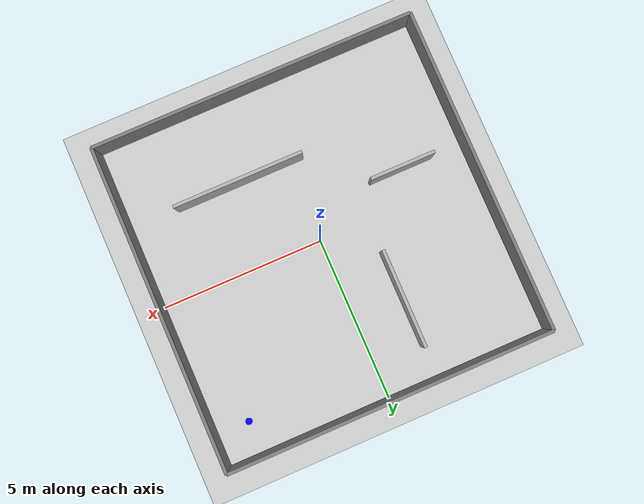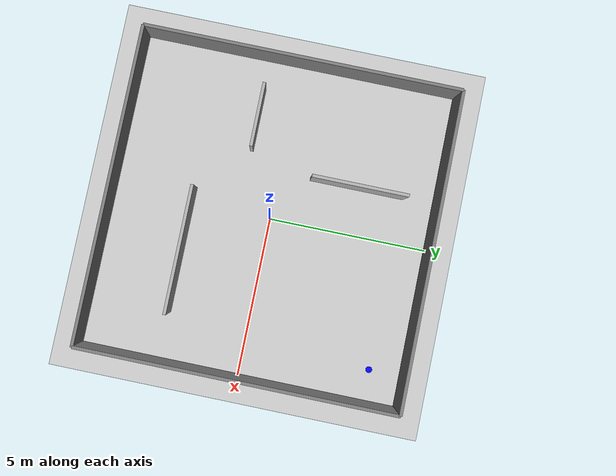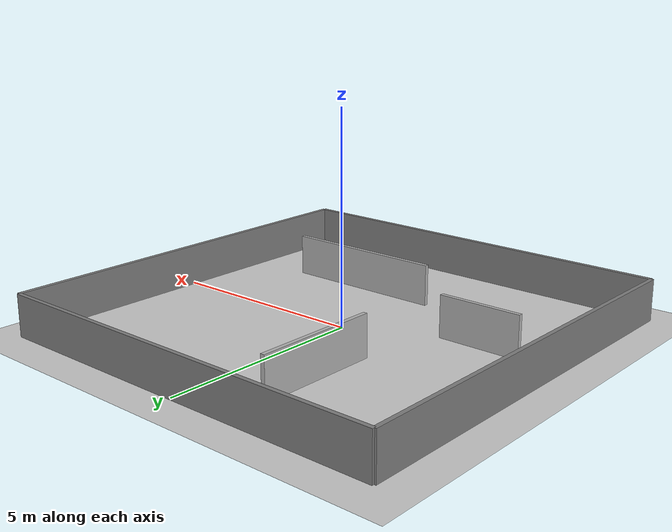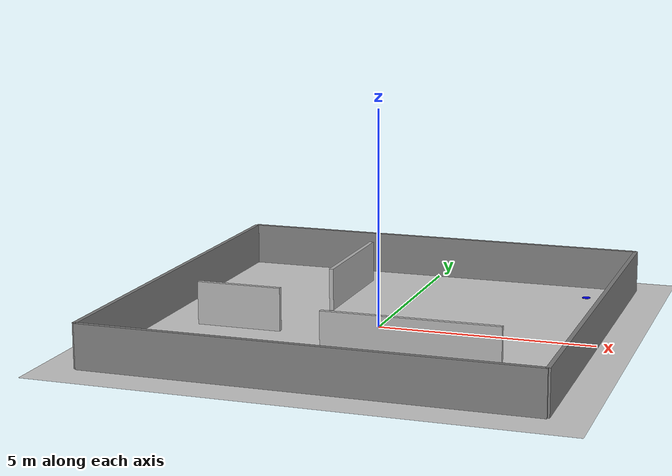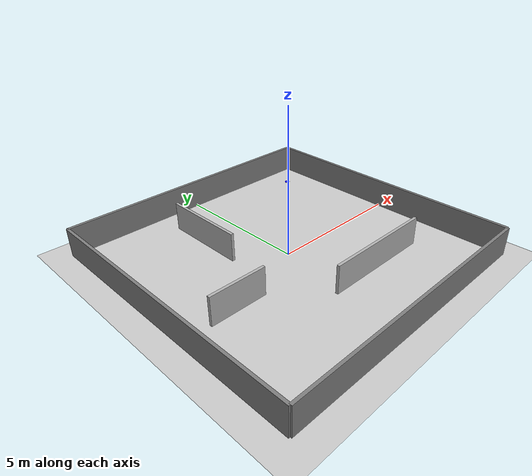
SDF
<?xml version="1.0" ?>
<sdf version="1.6">
  <world name="maze_world">
    <!-- 包含阳光、地面等基础元素 -->
    <include>
      <uri>model://sun</uri>
    </include>
    <include>
      <uri>model://ground_plane</uri>
    </include>

    <!-- 迷宫墙壁 - 外部围墙 -->
    <model name="wall_out_1">
      <static>true</static>
      <pose>0 5 0.5 0 0 0</pose>
      <link name="link">
        <collision name="collision">
          <geometry>
            <box><size>10 0.1 1</size></box>
          </geometry>
        </collision>
        <visual name="visual">
          <geometry>
            <box><size>10 0.1 1</size></box>
          </geometry>
          <material><ambient>0.5 0.5 0.5</ambient></material>
        </visual>
      </link>
    </model>
    <model name="wall_out_2">
      <static>true</static>
      <pose>5 0 0.5 0 0 1.57</pose>
      <link name="link">
        <collision name="collision">
          <geometry>
            <box><size>10 0.1 1</size></box>
          </geometry>
        </collision>
        <visual name="visual">
          <geometry>
            <box><size>10 0.1 1</size></box>
          </geometry>
          <material><ambient>0.5 0.5 0.5</ambient></material>
        </visual>
      </link>
    </model>
    <model name="wall_out_3">
      <static>true</static>
      <pose>0 -5 0.5 0 0 0</pose>
      <link name="link">
        <collision name="collision">
          <geometry>
            <box><size>10 0.1 1</size></box>
          </geometry>
        </collision>
        <visual name="visual">
          <geometry>
            <box><size>10 0.1 1</size></box>
          </geometry>
          <material><ambient>0.5 0.5 0.5</ambient></material>
        </visual>
      </link>
    </model>
    <model name="wall_out_4">
      <static>true</static>
      <pose>-5 0 0.5 0 0 1.57</pose>
      <link name="link">
        <collision name="collision">
          <geometry>
            <box><size>10 0.1 1</size></box>
          </geometry>
        </collision>
        <visual name="visual">
          <geometry>
            <box><size>10 0.1 1</size></box>
          </geometry>
          <material><ambient>0.5 0.5 0.5</ambient></material>
        </visual>
      </link>
    </model>

    <!-- 内部挡板，形成一个简单迷宫 -->
    <model name="wall_inner_1">
      <static>true</static>
      <pose>-1.5 2.5 0.5 0 0 1.57</pose>
      <link name="link">
        <collision name="collision">
          <geometry>
            <box><size>3 0.1 1</size></box>
          </geometry>
        </collision>
        <visual name="visual">
          <geometry>
            <box><size>3 0.1 1</size></box>
          </geometry>
          <material><ambient>0.7 0.7 0.7</ambient></material>
        </visual>
      </link>
    </model>
    <model name="wall_inner_2">
      <static>true</static>
      <pose>1.5 -2.5 0.5 0 0 0</pose>
      <link name="link">
        <collision name="collision">
          <geometry>
            <box><size>4 0.1 1</size></box>
          </geometry>
        </collision>
        <visual name="visual">
          <geometry>
            <box><size>4 0.1 1</size></box>
          </geometry>
          <material><ambient>0.7 0.7 0.7</ambient></material>
        </visual>
      </link>
    </model>
    <model name="wall_inner_3">
      <static>true</static>
      <pose>-3 -1 0.5 0 0 0</pose>
      <link name="link">
        <collision name="collision">
          <geometry>
            <box><size>2 0.1 1</size></box>
          </geometry>
        </collision>
        <visual name="visual">
          <geometry>
            <box><size>2 0.1 1</size></box>
          </geometry>
          <material><ambient>0.7 0.7 0.7</ambient></material>
        </visual>
      </link>
    </model>
    <!-- 可根据需要再添加更多墙壁，保证有通路到目标点 -->

    <!-- 放置一个简单的目标点标识（可选） -->
    <model name="goal_marker">
      <static>true</static>
      <pose>4 4 0 0 0 0</pose>
      <link name="link">
        <visual name="visual">
          <geometry>
            <cylinder><radius>0.1</radius><length>0.01</length></cylinder>
          </geometry>
          <material>
            <ambient>0 0 1 1</ambient>
          </material>
        </visual>
      </link>
    </model>
  </world>
</sdf>
